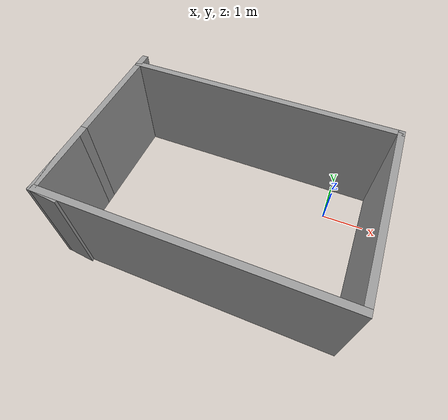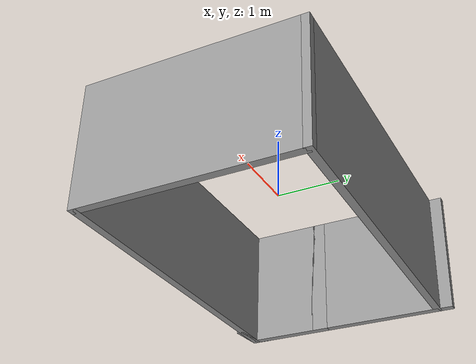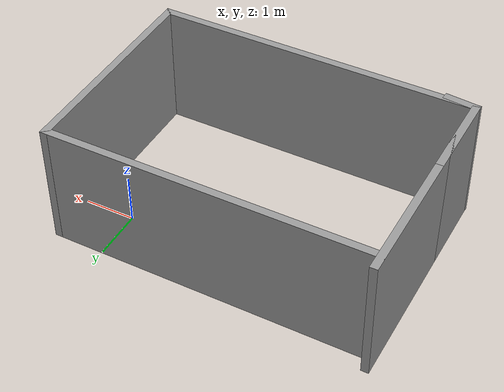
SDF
<?xml version='1.0'?>
<sdf version='1.6'>
  <model name='wu.world'>
    <pose frame=''>-2.22824 -1.00324 0 0 -0 0</pose>
    <link name='Wall_0'>
      <collision name='Wall_0_Collision'>
        <geometry>
          <box>
            <size>1.8 0.15 2.5</size>
          </box>
        </geometry>
        <pose frame=''>0 0 1.25 0 -0 0</pose>
      </collision>
      <visual name='Wall_0_Visual'>
        <pose frame=''>0 0 1.25 0 -0 0</pose>
        <geometry>
          <box>
            <size>1.8 0.15 2.5</size>
          </box>
        </geometry>
        <material>
          <script>
            <uri>file://media/materials/scripts/gazebo.material</uri>
            <name>Gazebo/Grey</name>
          </script>
          <ambient>1 1 1 1</ambient>
        </material>
        <meta>
          <layer>0</layer>
        </meta>
      </visual>
      <pose frame=''>-3.17176 -1.32176 0 0 -0 -1.5708</pose>
    </link>
    <link name='Wall_1'>
      <collision name='Wall_1_Collision'>
        <geometry>
          <box>
            <size>4.5 0.15 2.5</size>
          </box>
        </geometry>
        <pose frame=''>0 0 1.25 0 -0 0</pose>
      </collision>
      <visual name='Wall_1_Visual'>
        <pose frame=''>0 0 1.25 0 -0 0</pose>
        <geometry>
          <box>
            <size>4.5 0.15 2.5</size>
          </box>
        </geometry>
        <material>
          <script>
            <uri>file://media/materials/scripts/gazebo.material</uri>
            <name>Gazebo/Grey</name>
          </script>
          <ambient>1 1 1 1</ambient>
        </material>
        <meta>
          <layer>0</layer>
        </meta>
      </visual>
      <pose frame=''>-3.17176 0.028241 0 0 -0 1.5708</pose>
    </link>
    <link name='Wall_3'>
      <collision name='Wall_3_Collision'>
        <geometry>
          <box>
            <size>0.702268 0.15 2.5</size>
          </box>
        </geometry>
        <pose frame=''>0 0 1.25 0 -0 0</pose>
      </collision>
      <visual name='Wall_3_Visual'>
        <pose frame=''>0 0 1.25 0 -0 0</pose>
        <geometry>
          <box>
            <size>0.702268 0.15 2.5</size>
          </box>
        </geometry>
        <material>
          <script>
            <uri>file://media/materials/scripts/gazebo.material</uri>
            <name>Gazebo/Grey</name>
          </script>
          <ambient>1 1 1 1</ambient>
        </material>
        <meta>
          <layer>0</layer>
        </meta>
      </visual>
      <pose frame=''>-2.89676 -2.17176 0 0 -0 3.05093</pose>
    </link>
    <link name='Wall_4'>
      <collision name='Wall_4_Collision'>
        <geometry>
          <box>
            <size>6.5 0.15 2.5</size>
          </box>
        </geometry>
        <pose frame=''>0 0 1.25 0 -0 0</pose>
      </collision>
      <visual name='Wall_4_Visual'>
        <pose frame=''>0 0 1.25 0 -0 0</pose>
        <geometry>
          <box>
            <size>6.5 0.15 2.5</size>
          </box>
        </geometry>
        <material>
          <script>
            <uri>file://media/materials/scripts/gazebo.material</uri>
            <name>Gazebo/Grey</name>
          </script>
          <ambient>1 1 1 1</ambient>
        </material>
        <meta>
          <layer>0</layer>
        </meta>
      </visual>
      <pose frame=''>0.003241 -2.14676 0 0 -0 0</pose>
    </link>
    <link name='Wall_5'>
      <collision name='Wall_5_Collision'>
        <geometry>
          <box>
            <size>4.25 0.15 2.5</size>
          </box>
        </geometry>
        <pose frame=''>0 0 1.25 0 -0 0</pose>
      </collision>
      <visual name='Wall_5_Visual'>
        <pose frame=''>0 0 1.25 0 -0 0</pose>
        <geometry>
          <box>
            <size>4.25 0.15 2.5</size>
          </box>
        </geometry>
        <material>
          <script>
            <uri>file://media/materials/scripts/gazebo.material</uri>
            <name>Gazebo/Grey</name>
          </script>
          <ambient>1 1 1 1</ambient>
        </material>
        <meta>
          <layer>0</layer>
        </meta>
      </visual>
      <pose frame=''>3.17824 -0.096759 0 0 -0 1.5708</pose>
    </link>
    <link name='Wall_6'>
      <collision name='Wall_6_Collision'>
        <geometry>
          <box>
            <size>6.5 0.15 2.5</size>
          </box>
        </geometry>
        <pose frame=''>0 0 1.25 0 -0 0</pose>
      </collision>
      <visual name='Wall_6_Visual'>
        <pose frame=''>0 0 1.25 0 -0 0</pose>
        <geometry>
          <box>
            <size>6.5 0.15 2.5</size>
          </box>
        </geometry>
        <material>
          <script>
            <uri>file://media/materials/scripts/gazebo.material</uri>
            <name>Gazebo/Grey</name>
          </script>
          <ambient>1 1 1 1</ambient>
        </material>
        <meta>
          <layer>0</layer>
        </meta>
      </visual>
      <pose frame=''>0.003241 1.95324 0 0 -0 3.14159</pose>
    </link>
    <static>1</static>
  </model>
</sdf>
